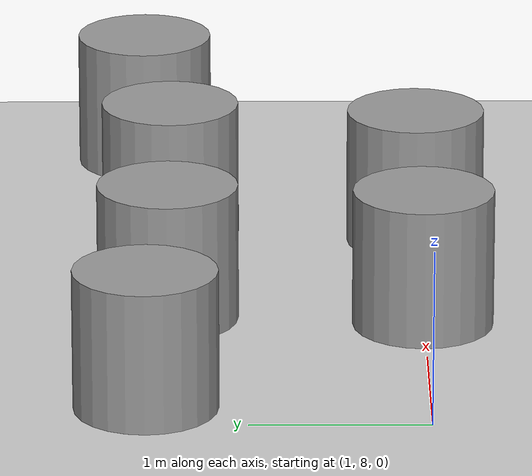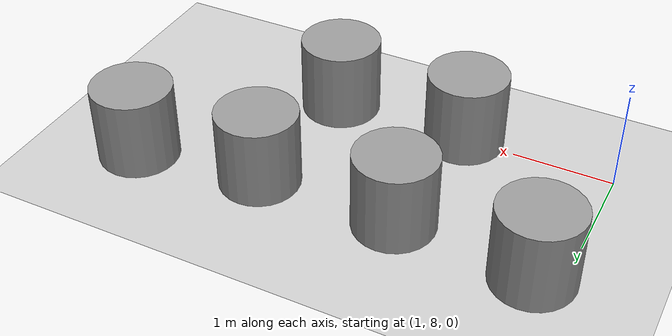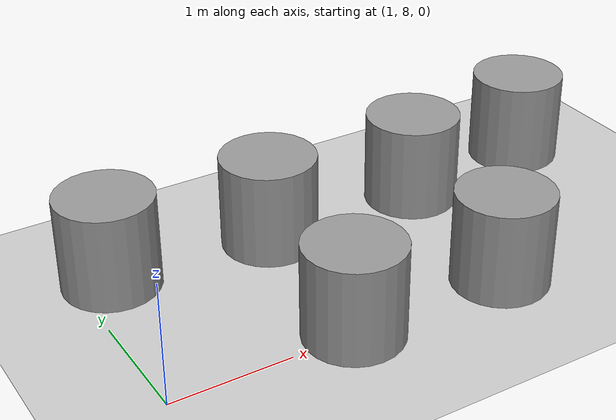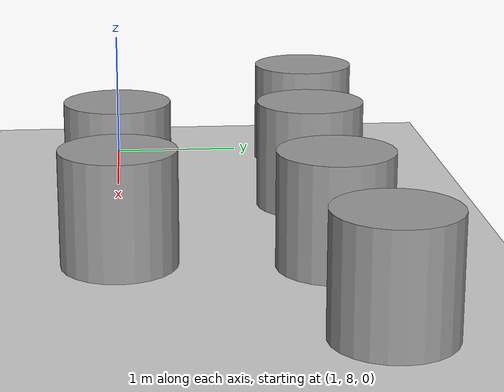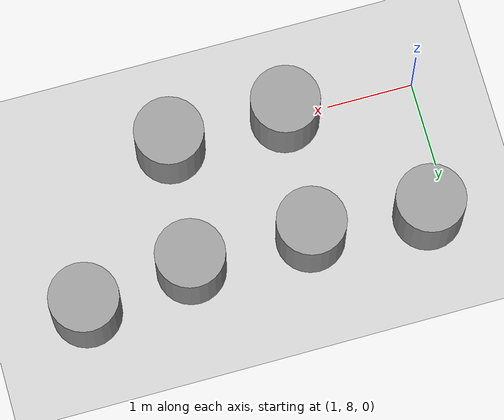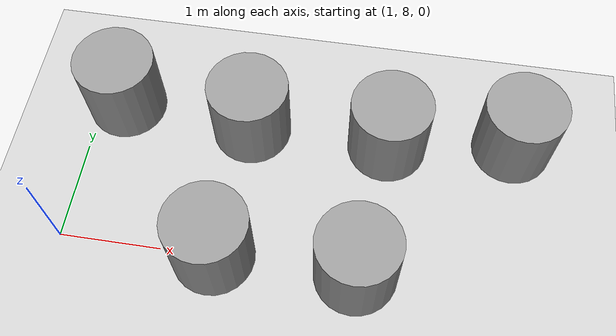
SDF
<sdf version="1.7">
 <world name="default">
  <model name="ground_plane">
   <static>1</static>
   <link name="link">
    <collision name="collision">
     <geometry><plane><normal>0 0 1</normal><size>100 100</size></plane></geometry>
     <surface>
      <contact><collide_bitmask>65535</collide_bitmask></contact>
      <friction><ode><mu>100</mu><mu2>50</mu2></ode></friction>
     </surface>
    </collision>
    <visual name="visual">
     <cast_shadows>0</cast_shadows>
     <geometry><plane><normal>0 0 1</normal><size>100 100</size></plane></geometry>
     <material>
      <script><uri>file://media/materials/scripts/gazebo.material</uri><name>Gazebo/Grey</name></script>
     </material>
    </visual>
   </link>
  </model>
  <model name="obs8">
   <link name="link_0">
    <inertial>
     <mass>1</mass>
     <inertia><ixx>0.145833</ixx><ixy>0</ixy><ixz>0</ixz><iyy>0.145833</iyy><iyz>0</iyz><izz>0.125</izz></inertia>
    </inertial>
    <visual name="visual">
     <geometry><cylinder><radius>0.4</radius><length>0.8</length></cylinder></geometry>
     <material>
      <lighting>1</lighting>
      <script><uri>file://media/materials/scripts/gazebo.material</uri><name>Gazebo/Grey</name></script>
      <shader type="pixel"><normal_map>__default__</normal_map></shader>
      <ambient>0.3 0.3 0.3 1</ambient>
      <diffuse>0.7 0.7 0.7 1</diffuse>
      <specular>0.01 0.01 0.01 1</specular>
      <emissive>0 0 0 1</emissive>
     </material>
    </visual>
    <collision name="collision">
     <geometry><cylinder><radius>0.4</radius><length>0.8</length></cylinder></geometry>
     <surface>
      <friction>
       <ode><mu>1</mu><mu2>1</mu2><fdir1>0 0 0</fdir1><slip1>0</slip1><slip2>0</slip2></ode>
       <torsional>
        <coefficient>1</coefficient>
        <patch_radius>0</patch_radius>
        <surface_radius>0</surface_radius>
        <use_patch_radius>1</use_patch_radius>
        <ode><slip>0</slip></ode>
       </torsional>
      </friction>
      <bounce><restitution_coefficient>0</restitution_coefficient><threshold>1e+06</threshold></bounce>
      <contact>
       <collide_without_contact>0</collide_without_contact>
       <collide_without_contact_bitmask>1</collide_without_contact_bitmask>
       <collide_bitmask>1</collide_bitmask>
       <ode>
        <soft_cfm>0</soft_cfm>
        <soft_erp>0.2</soft_erp>
        <kp>1e+13</kp>
        <kd>1</kd>
        <max_vel>0.01</max_vel>
        <min_depth>0</min_depth>
       </ode>
       <bullet>
        <split_impulse>1</split_impulse>
        <split_impulse_penetration_threshold>-0.01</split_impulse_penetration_threshold>
        <soft_cfm>0</soft_cfm>
        <soft_erp>0.2</soft_erp>
        <kp>1e+13</kp>
        <kd>1</kd>
       </bullet>
      </contact>
     </surface>
    </collision>
   </link>
   <static>0</static>
   <pose>1.26703 9.55912 0.399997 -3e-06 -3e-06 0</pose>
  </model>
  <model name="obs9">
   <link name="link_0">
    <inertial>
     <mass>1</mass>
     <inertia><ixx>0.145833</ixx><ixy>0</ixy><ixz>0</ixz><iyy>0.145833</iyy><iyz>0</iyz><izz>0.125</izz></inertia>
    </inertial>
    <visual name="visual">
     <geometry><cylinder><radius>0.4</radius><length>0.8</length></cylinder></geometry>
     <material>
      <lighting>1</lighting>
      <script><uri>file://media/materials/scripts/gazebo.material</uri><name>Gazebo/Grey</name></script>
      <shader type="pixel"><normal_map>__default__</normal_map></shader>
      <ambient>0.3 0.3 0.3 1</ambient>
      <diffuse>0.7 0.7 0.7 1</diffuse>
      <specular>0.01 0.01 0.01 1</specular>
      <emissive>0 0 0 1</emissive>
     </material>
    </visual>
    <collision name="collision">
     <geometry><cylinder><radius>0.4</radius><length>0.8</length></cylinder></geometry>
     <surface>
      <friction>
       <ode><mu>1</mu><mu2>1</mu2><fdir1>0 0 0</fdir1><slip1>0</slip1><slip2>0</slip2></ode>
       <torsional>
        <coefficient>1</coefficient>
        <patch_radius>0</patch_radius>
        <surface_radius>0</surface_radius>
        <use_patch_radius>1</use_patch_radius>
        <ode><slip>0</slip></ode>
       </torsional>
      </friction>
      <bounce><restitution_coefficient>0</restitution_coefficient><threshold>1e+06</threshold></bounce>
      <contact>
       <collide_without_contact>0</collide_without_contact>
       <collide_without_contact_bitmask>1</collide_without_contact_bitmask>
       <collide_bitmask>1</collide_bitmask>
       <ode>
        <soft_cfm>0</soft_cfm>
        <soft_erp>0.2</soft_erp>
        <kp>1e+13</kp>
        <kd>1</kd>
        <max_vel>0.01</max_vel>
        <min_depth>0</min_depth>
       </ode>
       <bullet>
        <split_impulse>1</split_impulse>
        <split_impulse_penetration_threshold>-0.01</split_impulse_penetration_threshold>
        <soft_cfm>0</soft_cfm>
        <soft_erp>0.2</soft_erp>
        <kp>1e+13</kp>
        <kd>1</kd>
       </bullet>
      </contact>
     </surface>
    </collision>
   </link>
   <static>0</static>
   <pose>2.62392 9.45295 0.399993 3e-06 3e-06 0</pose>
  </model>
  <model name="obs6">
   <link name="link_0">
    <inertial>
     <mass>1</mass>
     <inertia><ixx>0.145833</ixx><ixy>0</ixy><ixz>0</ixz><iyy>0.145833</iyy><iyz>0</iyz><izz>0.125</izz></inertia>
    </inertial>
    <visual name="visual">
     <geometry><cylinder><radius>0.4</radius><length>0.8</length></cylinder></geometry>
     <material>
      <lighting>1</lighting>
      <script><uri>file://media/materials/scripts/gazebo.material</uri><name>Gazebo/Grey</name></script>
      <shader type="pixel"><normal_map>__default__</normal_map></shader>
      <ambient>0.3 0.3 0.3 1</ambient>
      <diffuse>0.7 0.7 0.7 1</diffuse>
      <specular>0.01 0.01 0.01 1</specular>
      <emissive>0 0 0 1</emissive>
     </material>
    </visual>
    <collision name="collision">
     <geometry><cylinder><radius>0.4</radius><length>0.8</length></cylinder></geometry>
     <surface>
      <friction>
       <ode><mu>1</mu><mu2>1</mu2><fdir1>0 0 0</fdir1><slip1>0</slip1><slip2>0</slip2></ode>
       <torsional>
        <coefficient>1</coefficient>
        <patch_radius>0</patch_radius>
        <surface_radius>0</surface_radius>
        <use_patch_radius>1</use_patch_radius>
        <ode><slip>0</slip></ode>
       </torsional>
      </friction>
      <bounce><restitution_coefficient>0</restitution_coefficient><threshold>1e+06</threshold></bounce>
      <contact>
       <collide_without_contact>0</collide_without_contact>
       <collide_without_contact_bitmask>1</collide_without_contact_bitmask>
       <collide_bitmask>1</collide_bitmask>
       <ode>
        <soft_cfm>0</soft_cfm>
        <soft_erp>0.2</soft_erp>
        <kp>1e+13</kp>
        <kd>1</kd>
        <max_vel>0.01</max_vel>
        <min_depth>0</min_depth>
       </ode>
       <bullet>
        <split_impulse>1</split_impulse>
        <split_impulse_penetration_threshold>-0.01</split_impulse_penetration_threshold>
        <soft_cfm>0</soft_cfm>
        <soft_erp>0.2</soft_erp>
        <kp>1e+13</kp>
        <kd>1</kd>
       </bullet>
      </contact>
     </surface>
    </collision>
   </link>
   <static>0</static>
   <pose>4.02823 9.4525 0.399997 -3e-06 -3e-06 0</pose>
  </model>
  <model name="obs5">
   <link name="link_0">
    <inertial>
     <mass>1</mass>
     <inertia><ixx>0.145833</ixx><ixy>0</ixy><ixz>0</ixz><iyy>0.145833</iyy><iyz>0</iyz><izz>0.125</izz></inertia>
    </inertial>
    <visual name="visual">
     <geometry><cylinder><radius>0.4</radius><length>0.8</length></cylinder></geometry>
     <material>
      <lighting>1</lighting>
      <script><uri>file://media/materials/scripts/gazebo.material</uri><name>Gazebo/Grey</name></script>
      <shader type="pixel"><normal_map>__default__</normal_map></shader>
      <ambient>0.3 0.3 0.3 1</ambient>
      <diffuse>0.7 0.7 0.7 1</diffuse>
      <specular>0.01 0.01 0.01 1</specular>
      <emissive>0 0 0 1</emissive>
     </material>
    </visual>
    <collision name="collision">
     <geometry><cylinder><radius>0.4</radius><length>0.8</length></cylinder></geometry>
     <surface>
      <friction>
       <ode><mu>1</mu><mu2>1</mu2><fdir1>0 0 0</fdir1><slip1>0</slip1><slip2>0</slip2></ode>
       <torsional>
        <coefficient>1</coefficient>
        <patch_radius>0</patch_radius>
        <surface_radius>0</surface_radius>
        <use_patch_radius>1</use_patch_radius>
        <ode><slip>0</slip></ode>
       </torsional>
      </friction>
      <bounce><restitution_coefficient>0</restitution_coefficient><threshold>1e+06</threshold></bounce>
      <contact>
       <collide_without_contact>0</collide_without_contact>
       <collide_without_contact_bitmask>1</collide_without_contact_bitmask>
       <collide_bitmask>1</collide_bitmask>
       <ode>
        <soft_cfm>0</soft_cfm>
        <soft_erp>0.2</soft_erp>
        <kp>1e+13</kp>
        <kd>1</kd>
        <max_vel>0.01</max_vel>
        <min_depth>0</min_depth>
       </ode>
       <bullet>
        <split_impulse>1</split_impulse>
        <split_impulse_penetration_threshold>-0.01</split_impulse_penetration_threshold>
        <soft_cfm>0</soft_cfm>
        <soft_erp>0.2</soft_erp>
        <kp>1e+13</kp>
        <kd>1</kd>
       </bullet>
      </contact>
     </surface>
    </collision>
   </link>
   <static>0</static>
   <pose>2.52258 8.0087 0.399993 3e-06 3e-06 0</pose>
  </model>
  <model name="obs4">
   <link name="link_0">
    <inertial>
     <mass>1</mass>
     <inertia><ixx>0.145833</ixx><ixy>0</ixy><ixz>0</ixz><iyy>0.145833</iyy><iyz>0</iyz><izz>0.125</izz></inertia>
    </inertial>
    <visual name="visual">
     <geometry><cylinder><radius>0.4</radius><length>0.8</length></cylinder></geometry>
     <material>
      <lighting>1</lighting>
      <script><uri>file://media/materials/scripts/gazebo.material</uri><name>Gazebo/Grey</name></script>
      <shader type="pixel"><normal_map>__default__</normal_map></shader>
      <ambient>0.3 0.3 0.3 1</ambient>
      <diffuse>0.7 0.7 0.7 1</diffuse>
      <specular>0.01 0.01 0.01 1</specular>
      <emissive>0 0 0 1</emissive>
     </material>
    </visual>
    <collision name="collision">
     <geometry><cylinder><radius>0.4</radius><length>0.8</length></cylinder></geometry>
     <surface>
      <friction>
       <ode><mu>1</mu><mu2>1</mu2><fdir1>0 0 0</fdir1><slip1>0</slip1><slip2>0</slip2></ode>
       <torsional>
        <coefficient>1</coefficient>
        <patch_radius>0</patch_radius>
        <surface_radius>0</surface_radius>
        <use_patch_radius>1</use_patch_radius>
        <ode><slip>0</slip></ode>
       </torsional>
      </friction>
      <bounce><restitution_coefficient>0</restitution_coefficient><threshold>1e+06</threshold></bounce>
      <contact>
       <collide_without_contact>0</collide_without_contact>
       <collide_without_contact_bitmask>1</collide_without_contact_bitmask>
       <collide_bitmask>1</collide_bitmask>
       <ode>
        <soft_cfm>0</soft_cfm>
        <soft_erp>0.2</soft_erp>
        <kp>1e+13</kp>
        <kd>1</kd>
        <max_vel>0.01</max_vel>
        <min_depth>0</min_depth>
       </ode>
       <bullet>
        <split_impulse>1</split_impulse>
        <split_impulse_penetration_threshold>-0.01</split_impulse_penetration_threshold>
        <soft_cfm>0</soft_cfm>
        <soft_erp>0.2</soft_erp>
        <kp>1e+13</kp>
        <kd>1</kd>
       </bullet>
      </contact>
     </surface>
    </collision>
   </link>
   <static>0</static>
   <pose>3.88691 8.01621 0.399993 3e-06 3e-06 0</pose>
  </model>
  <model name="obs2">
   <link name="link_0">
    <inertial>
     <mass>1</mass>
     <inertia><ixx>0.145833</ixx><ixy>0</ixy><ixz>0</ixz><iyy>0.145833</iyy><iyz>0</iyz><izz>0.125</izz></inertia>
    </inertial>
    <visual name="visual">
     <geometry><cylinder><radius>0.4</radius><length>0.8</length></cylinder></geometry>
     <material>
      <lighting>1</lighting>
      <script><uri>file://media/materials/scripts/gazebo.material</uri><name>Gazebo/Grey</name></script>
      <shader type="pixel"><normal_map>__default__</normal_map></shader>
      <ambient>0.3 0.3 0.3 1</ambient>
      <diffuse>0.7 0.7 0.7 1</diffuse>
      <specular>0.01 0.01 0.01 1</specular>
      <emissive>0 0 0 1</emissive>
     </material>
    </visual>
    <collision name="collision">
     <geometry><cylinder><radius>0.4</radius><length>0.8</length></cylinder></geometry>
     <surface>
      <friction>
       <ode><mu>1</mu><mu2>1</mu2><fdir1>0 0 0</fdir1><slip1>0</slip1><slip2>0</slip2></ode>
       <torsional>
        <coefficient>1</coefficient>
        <patch_radius>0</patch_radius>
        <surface_radius>0</surface_radius>
        <use_patch_radius>1</use_patch_radius>
        <ode><slip>0</slip></ode>
       </torsional>
      </friction>
      <bounce><restitution_coefficient>0</restitution_coefficient><threshold>1e+06</threshold></bounce>
      <contact>
       <collide_without_contact>0</collide_without_contact>
       <collide_without_contact_bitmask>1</collide_without_contact_bitmask>
       <collide_bitmask>1</collide_bitmask>
       <ode>
        <soft_cfm>0</soft_cfm>
        <soft_erp>0.2</soft_erp>
        <kp>1e+13</kp>
        <kd>1</kd>
        <max_vel>0.01</max_vel>
        <min_depth>0</min_depth>
       </ode>
       <bullet>
        <split_impulse>1</split_impulse>
        <split_impulse_penetration_threshold>-0.01</split_impulse_penetration_threshold>
        <soft_cfm>0</soft_cfm>
        <soft_erp>0.2</soft_erp>
        <kp>1e+13</kp>
        <kd>1</kd>
       </bullet>
      </contact>
     </surface>
    </collision>
   </link>
   <static>0</static>
   <pose>5.29291 9.62133 0.399997 -3e-06 -3e-06 0</pose>
  </model>
 </world>
</sdf>
